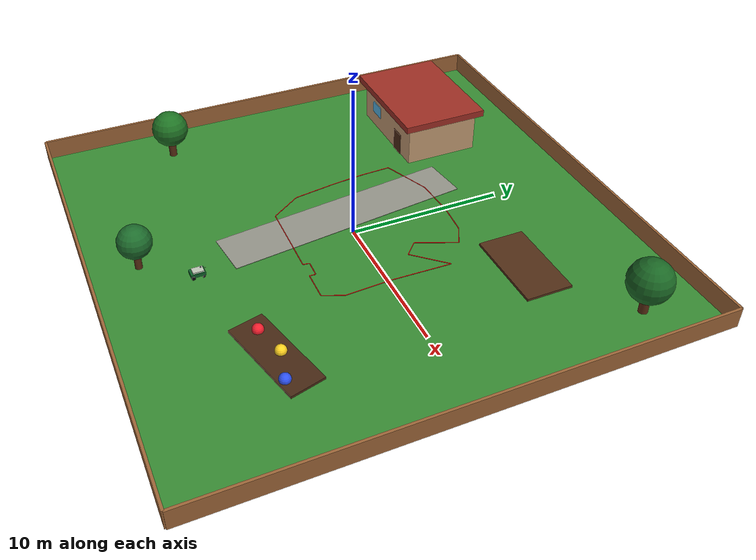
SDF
<?xml version="1.0"?>
<sdf version="1.6">
  <world name="mower_garden_1000sqm">
    <gravity>0 0 -9.8</gravity>
    <magnetic_field>6e-06 2.3e-05 -4.2e-05</magnetic_field>
    <atmosphere type="adiabatic"/>

    <physics name="default_physics" default="0" type="ode">
      <max_step_size>0.001</max_step_size>
      <real_time_factor>1.0</real_time_factor>
      <real_time_update_rate>1000</real_time_update_rate>
    </physics>

    <scene>
      <ambient>0.70 0.72 0.68 1</ambient>
      <background>0.74 0.86 0.96 1</background>
      <shadows>true</shadows>
    </scene>

    <light name="sun" type="directional">
      <cast_shadows>true</cast_shadows>
      <pose>0 0 14 0 0 0</pose>
      <diffuse>1.0 0.96 0.86 1</diffuse>
      <specular>0.35 0.35 0.30 1</specular>
      <attenuation>
        <range>1000</range>
        <constant>0.9</constant>
        <linear>0.01</linear>
        <quadratic>0.001</quadratic>
      </attenuation>
      <direction>-0.45 0.25 -0.86</direction>
    </light>

    <model name="lawn_1024sqm">
      <static>true</static>
      <link name="link">
        <collision name="collision">
          <geometry>
            <plane>
              <normal>0 0 1</normal>
              <size>32 32</size>
            </plane>
          </geometry>
          <surface>
            <friction>
              <ode>
                <mu>1.0</mu>
                <mu2>1.0</mu2>
              </ode>
            </friction>
          </surface>
        </collision>
        <visual name="visual">
          <geometry>
            <plane>
              <normal>0 0 1</normal>
              <size>32 32</size>
            </plane>
          </geometry>
          <material>
            <ambient>0.18 0.43 0.16 1</ambient>
            <diffuse>0.22 0.55 0.20 1</diffuse>
          </material>
        </visual>
      </link>
    </model>

    <model name="house">
      <static>true</static>
      <pose>-9 9 0 0 0 0</pose>
      <link name="body">
        <pose>0 0 1.25 0 0 0</pose>
        <collision name="collision">
          <geometry>
            <box>
              <size>7 5 2.5</size>
            </box>
          </geometry>
        </collision>
        <visual name="visual">
          <geometry>
            <box>
              <size>7 5 2.5</size>
            </box>
          </geometry>
          <material>
            <ambient>0.72 0.56 0.42 1</ambient>
            <diffuse>0.78 0.62 0.46 1</diffuse>
          </material>
        </visual>
      </link>
      <link name="roof">
        <pose>0 0 2.9 0 0 0</pose>
        <visual name="visual">
          <geometry>
            <box>
              <size>7.8 5.8 0.45</size>
            </box>
          </geometry>
          <material>
            <ambient>0.45 0.12 0.10 1</ambient>
            <diffuse>0.62 0.18 0.14 1</diffuse>
          </material>
        </visual>
      </link>
      <link name="door">
        <pose>1.7 -2.53 0.75 0 0 0</pose>
        <visual name="visual">
          <geometry>
            <box>
              <size>1.0 0.05 1.5</size>
            </box>
          </geometry>
          <material>
            <ambient>0.22 0.11 0.05 1</ambient>
            <diffuse>0.30 0.16 0.08 1</diffuse>
          </material>
        </visual>
      </link>
      <link name="window_left">
        <pose>-1.6 -2.54 1.45 0 0 0</pose>
        <visual name="visual">
          <geometry>
            <box>
              <size>1.2 0.04 0.8</size>
            </box>
          </geometry>
          <material>
            <ambient>0.22 0.55 0.75 1</ambient>
            <diffuse>0.34 0.72 0.92 1</diffuse>
          </material>
        </visual>
      </link>
      <link name="window_right">
        <pose>-3.0 0.6 1.45 0 0 1.5708</pose>
        <visual name="visual">
          <geometry>
            <box>
              <size>1.2 0.04 0.8</size>
            </box>
          </geometry>
          <material>
            <ambient>0.22 0.55 0.75 1</ambient>
            <diffuse>0.34 0.72 0.92 1</diffuse>
          </material>
        </visual>
      </link>
    </model>

    <model name="garden_beds">
      <static>true</static>
      <link name="vegetable_bed">
        <pose>7 8 0.08 0 0 0</pose>
        <collision name="collision">
          <geometry>
            <box>
              <size>5.5 3.0 0.16</size>
            </box>
          </geometry>
        </collision>
        <visual name="visual">
          <geometry>
            <box>
              <size>5.5 3.0 0.16</size>
            </box>
          </geometry>
          <material>
            <ambient>0.24 0.12 0.06 1</ambient>
            <diffuse>0.32 0.18 0.09 1</diffuse>
          </material>
        </visual>
      </link>
      <link name="flower_bed">
        <pose>8 -8 0.08 0 0 0.25</pose>
        <collision name="collision">
          <geometry>
            <box>
              <size>6.0 2.2 0.16</size>
            </box>
          </geometry>
        </collision>
        <visual name="visual">
          <geometry>
            <box>
              <size>6.0 2.2 0.16</size>
            </box>
          </geometry>
          <material>
            <ambient>0.20 0.12 0.07 1</ambient>
            <diffuse>0.28 0.16 0.08 1</diffuse>
          </material>
        </visual>
      </link>
      <link name="flower_patch_red">
        <pose>6.0 -8.3 0.25 0 0 0</pose>
        <visual name="visual">
          <geometry>
            <sphere>
              <radius>0.35</radius>
            </sphere>
          </geometry>
          <material>
            <ambient>0.85 0.08 0.12 1</ambient>
            <diffuse>0.95 0.12 0.18 1</diffuse>
          </material>
        </visual>
      </link>
      <link name="flower_patch_yellow">
        <pose>8.0 -7.7 0.25 0 0 0</pose>
        <visual name="visual">
          <geometry>
            <sphere>
              <radius>0.35</radius>
            </sphere>
          </geometry>
          <material>
            <ambient>0.95 0.72 0.08 1</ambient>
            <diffuse>1.0 0.82 0.12 1</diffuse>
          </material>
        </visual>
      </link>
      <link name="flower_patch_blue">
        <pose>10.0 -8.2 0.25 0 0 0</pose>
        <visual name="visual">
          <geometry>
            <sphere>
              <radius>0.35</radius>
            </sphere>
          </geometry>
          <material>
            <ambient>0.12 0.24 0.75 1</ambient>
            <diffuse>0.18 0.32 0.95 1</diffuse>
          </material>
        </visual>
      </link>
    </model>

    <model name="trees">
      <static>true</static>
      <link name="tree_1_trunk">
        <pose>-13 -8 0.75 0 0 0</pose>
        <collision name="collision">
          <geometry>
            <cylinder>
              <radius>0.25</radius>
              <length>1.5</length>
            </cylinder>
          </geometry>
        </collision>
        <visual name="visual">
          <geometry>
            <cylinder>
              <radius>0.25</radius>
              <length>1.5</length>
            </cylinder>
          </geometry>
          <material>
            <ambient>0.26 0.13 0.06 1</ambient>
            <diffuse>0.36 0.18 0.08 1</diffuse>
          </material>
        </visual>
      </link>
      <link name="tree_1_canopy">
        <pose>-13 -8 2.1 0 0 0</pose>
        <visual name="visual">
          <geometry>
            <sphere>
              <radius>1.2</radius>
            </sphere>
          </geometry>
          <material>
            <ambient>0.08 0.32 0.10 1</ambient>
            <diffuse>0.12 0.45 0.14 1</diffuse>
          </material>
        </visual>
      </link>
      <link name="tree_2_trunk">
        <pose>-2 -13 0.65 0 0 0</pose>
        <collision name="collision">
          <geometry>
            <cylinder>
              <radius>0.22</radius>
              <length>1.3</length>
            </cylinder>
          </geometry>
        </collision>
        <visual name="visual">
          <geometry>
            <cylinder>
              <radius>0.22</radius>
              <length>1.3</length>
            </cylinder>
          </geometry>
          <material>
            <ambient>0.26 0.13 0.06 1</ambient>
            <diffuse>0.36 0.18 0.08 1</diffuse>
          </material>
        </visual>
      </link>
      <link name="tree_2_canopy">
        <pose>-2 -13 1.95 0 0 0</pose>
        <visual name="visual">
          <geometry>
            <sphere>
              <radius>1.05</radius>
            </sphere>
          </geometry>
          <material>
            <ambient>0.07 0.30 0.12 1</ambient>
            <diffuse>0.11 0.42 0.17 1</diffuse>
          </material>
        </visual>
      </link>
      <link name="tree_3_trunk">
        <pose>13 12 0.8 0 0 0</pose>
        <collision name="collision">
          <geometry>
            <cylinder>
              <radius>0.28</radius>
              <length>1.6</length>
            </cylinder>
          </geometry>
        </collision>
        <visual name="visual">
          <geometry>
            <cylinder>
              <radius>0.28</radius>
              <length>1.6</length>
            </cylinder>
          </geometry>
          <material>
            <ambient>0.26 0.13 0.06 1</ambient>
            <diffuse>0.36 0.18 0.08 1</diffuse>
          </material>
        </visual>
      </link>
      <link name="tree_3_canopy">
        <pose>13 12 2.25 0 0 0</pose>
        <visual name="visual">
          <geometry>
            <sphere>
              <radius>1.35</radius>
            </sphere>
          </geometry>
          <material>
            <ambient>0.06 0.28 0.10 1</ambient>
            <diffuse>0.10 0.40 0.14 1</diffuse>
          </material>
        </visual>
      </link>
    </model>

    <model name="wooden_fence">
      <static>true</static>
      <pose>0 0 0 0 0 0</pose>
      <link name="north_rail">
        <pose>0 16 0.65 0 0 0</pose>
        <collision name="collision">
          <geometry>
            <box>
              <size>32 0.16 1.3</size>
            </box>
          </geometry>
        </collision>
        <visual name="visual">
          <geometry>
            <box>
              <size>32 0.16 1.3</size>
            </box>
          </geometry>
          <material>
            <ambient>0.48 0.30 0.16 1</ambient>
            <diffuse>0.62 0.40 0.22 1</diffuse>
          </material>
        </visual>
      </link>
      <link name="south_rail">
        <pose>0 -16 0.65 0 0 0</pose>
        <collision name="collision">
          <geometry>
            <box>
              <size>32 0.16 1.3</size>
            </box>
          </geometry>
        </collision>
        <visual name="visual">
          <geometry>
            <box>
              <size>32 0.16 1.3</size>
            </box>
          </geometry>
          <material>
            <ambient>0.48 0.30 0.16 1</ambient>
            <diffuse>0.62 0.40 0.22 1</diffuse>
          </material>
        </visual>
      </link>
      <link name="east_rail">
        <pose>16 0 0.65 0 0 0</pose>
        <collision name="collision">
          <geometry>
            <box>
              <size>0.16 32 1.3</size>
            </box>
          </geometry>
        </collision>
        <visual name="visual">
          <geometry>
            <box>
              <size>0.16 32 1.3</size>
            </box>
          </geometry>
          <material>
            <ambient>0.48 0.30 0.16 1</ambient>
            <diffuse>0.62 0.40 0.22 1</diffuse>
          </material>
        </visual>
      </link>
      <link name="west_rail">
        <pose>-16 0 0.65 0 0 0</pose>
        <collision name="collision">
          <geometry>
            <box>
              <size>0.16 32 1.3</size>
            </box>
          </geometry>
        </collision>
        <visual name="visual">
          <geometry>
            <box>
              <size>0.16 32 1.3</size>
            </box>
          </geometry>
          <material>
            <ambient>0.48 0.30 0.16 1</ambient>
            <diffuse>0.62 0.40 0.22 1</diffuse>
          </material>
        </visual>
      </link>
    </model>

    <model name="stone_path">
      <static>true</static>
      <link name="path">
        <pose>-2 0 0.02 0 0 0.12</pose>
        <visual name="visual">
          <geometry>
            <box>
              <size>3.0 16.0 0.04</size>
            </box>
          </geometry>
          <material>
            <ambient>0.42 0.42 0.39 1</ambient>
            <diffuse>0.58 0.58 0.54 1</diffuse>
          </material>
        </visual>
      </link>
    </model>

    <include>
      <uri>model://boundary_points</uri>
      <pose>0 0 0 0 0 0</pose>
    </include>

    <include>
      <uri>model://mower_robot</uri>
      <pose>0 -10 0.08 0 0 1.5708</pose>
    </include>
  </world>
</sdf>

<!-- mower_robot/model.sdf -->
<sdf version="1.6">
  <model name="mower_robot">
    <pose>0 0 0 0 0 0</pose>

    <link name="base_link">
      <inertial>
        <pose>-0.15 0 0 0 0 0</pose>
        <mass>20.0</mass>
        <inertia>
          <ixx>1.10</ixx>
          <ixy>0.0</ixy>
          <ixz>0.0</ixz>
          <iyy>1.65</iyy>
          <iyz>0.0</iyz>
          <izz>2.05</izz>
        </inertia>
      </inertial>
      <collision name="body_collision">
        <pose>0 0 0.08 0 0 0</pose>
        <geometry>
          <box>
            <size>0.9 0.62 0.22</size>
          </box>
        </geometry>
        <surface>
          <friction>
            <ode>
              <mu>0.8</mu>
              <mu2>0.8</mu2>
            </ode>
          </friction>
        </surface>
      </collision>
      <visual name="body_visual">
        <pose>0 0 0.08 0 0 0</pose>
        <geometry>
          <box>
            <size>0.9 0.62 0.22</size>
          </box>
        </geometry>
        <material>
          <ambient>0.05 0.28 0.12 1</ambient>
          <diffuse>0.05 0.38 0.16 1</diffuse>
          <specular>0.08 0.08 0.08 1</specular>
        </material>
      </visual>
      <visual name="top_cover">
        <pose>0.04 0 0.24 0 0 0</pose>
        <geometry>
          <box>
            <size>0.68 0.48 0.10</size>
          </box>
        </geometry>
        <material>
          <ambient>0.75 0.78 0.72 1</ambient>
          <diffuse>0.75 0.78 0.72 1</diffuse>
        </material>
      </visual>
      <visual name="cutting_disc">
        <pose>-0.05 0 -0.045 0 0 0</pose>
        <geometry>
          <cylinder>
            <radius>0.24</radius>
            <length>0.025</length>
          </cylinder>
        </geometry>
        <material>
          <ambient>0.14 0.14 0.14 1</ambient>
          <diffuse>0.16 0.16 0.16 1</diffuse>
        </material>
      </visual>
    </link>

    <link name="front_left_caster_yoke">
      <pose>0.36 0.34 -0.04 0 0 0</pose>
      <inertial>
        <mass>0.4</mass>
        <inertia>
          <ixx>0.001</ixx>
          <ixy>0.0</ixy>
          <ixz>0.0</ixz>
          <iyy>0.001</iyy>
          <iyz>0.0</iyz>
          <izz>0.001</izz>
        </inertia>
      </inertial>
      <visual name="fork_visual">
        <pose>0 0 0 0 0 0</pose>
        <geometry>
          <box>
            <size>0.06 0.10 0.12</size>
          </box>
        </geometry>
        <material>
          <ambient>0.18 0.18 0.18 1</ambient>
          <diffuse>0.22 0.22 0.22 1</diffuse>
        </material>
      </visual>
    </link>

    <link name="front_left_caster_wheel">
      <pose>0.30 0.34 -0.08 0 0 0</pose>
      <inertial>
        <mass>0.8</mass>
        <inertia>
          <ixx>0.004</ixx>
          <ixy>0.0</ixy>
          <ixz>0.0</ixz>
          <iyy>0.004</iyy>
          <iyz>0.0</iyz>
          <izz>0.007</izz>
        </inertia>
      </inertial>
      <collision name="collision">
        <pose>0 0 0 -1.5708 0 0</pose>
        <geometry>
          <cylinder>
            <radius>0.06</radius>
            <length>0.06</length>
          </cylinder>
        </geometry>
        <surface>
          <friction>
            <ode>
              <mu>1.0</mu>
              <mu2>1.0</mu2>
              <slip1>0.3</slip1>
              <slip2>0.3</slip2>
            </ode>
          </friction>
        </surface>
      </collision>
      <visual name="visual">
        <pose>0 0 0 -1.5708 0 0</pose>
        <geometry>
          <cylinder>
            <radius>0.06</radius>
            <length>0.06</length>
          </cylinder>
        </geometry>
        <material>
          <ambient>0.02 0.02 0.02 1</ambient>
          <diffuse>0.02 0.02 0.02 1</diffuse>
        </material>
      </visual>
    </link>

    <link name="front_right_caster_yoke">
      <pose>0.36 -0.34 -0.04 0 0 0</pose>
      <inertial>
        <mass>0.4</mass>
        <inertia>
          <ixx>0.001</ixx>
          <ixy>0.0</ixy>
          <ixz>0.0</ixz>
          <iyy>0.001</iyy>
          <iyz>0.0</iyz>
          <izz>0.001</izz>
        </inertia>
      </inertial>
      <visual name="fork_visual">
        <pose>0 0 0 0 0 0</pose>
        <geometry>
          <box>
            <size>0.06 0.10 0.12</size>
          </box>
        </geometry>
        <material>
          <ambient>0.18 0.18 0.18 1</ambient>
          <diffuse>0.22 0.22 0.22 1</diffuse>
        </material>
      </visual>
    </link>

    <link name="front_right_caster_wheel">
      <pose>0.30 -0.34 -0.08 0 0 0</pose>
      <inertial>
        <mass>0.8</mass>
        <inertia>
          <ixx>0.004</ixx>
          <ixy>0.0</ixy>
          <ixz>0.0</ixz>
          <iyy>0.004</iyy>
          <iyz>0.0</iyz>
          <izz>0.007</izz>
        </inertia>
      </inertial>
      <collision name="collision">
        <pose>0 0 0 -1.5708 0 0</pose>
        <geometry>
          <cylinder>
            <radius>0.06</radius>
            <length>0.06</length>
          </cylinder>
        </geometry>
        <surface>
          <friction>
            <ode>
              <mu>1.0</mu>
              <mu2>1.0</mu2>
              <slip1>0.3</slip1>
              <slip2>0.3</slip2>
            </ode>
          </friction>
        </surface>
      </collision>
      <visual name="visual">
        <pose>0 0 0 -1.5708 0 0</pose>
        <geometry>
          <cylinder>
            <radius>0.06</radius>
            <length>0.06</length>
          </cylinder>
        </geometry>
        <material>
          <ambient>0.02 0.02 0.02 1</ambient>
          <diffuse>0.02 0.02 0.02 1</diffuse>
        </material>
      </visual>
    </link>

    <link name="rear_left_wheel">
      <pose>-0.32 0.34 -0.02 -1.5708 0 0</pose>
      <inertial>
        <mass>1.2</mass>
        <inertia>
          <ixx>0.006</ixx>
          <ixy>0.0</ixy>
          <ixz>0.0</ixz>
          <iyy>0.006</iyy>
          <iyz>0.0</iyz>
          <izz>0.010</izz>
        </inertia>
      </inertial>
      <collision name="collision">
        <geometry>
          <cylinder>
            <radius>0.12</radius>
            <length>0.08</length>
          </cylinder>
        </geometry>
        <surface>
          <friction>
            <ode>
              <mu>1.0</mu>
              <mu2>1.0</mu2>
              <slip1>0.01</slip1>
              <slip2>0.01</slip2>
            </ode>
          </friction>
        </surface>
      </collision>
      <visual name="visual">
        <geometry>
          <cylinder>
            <radius>0.12</radius>
            <length>0.08</length>
          </cylinder>
        </geometry>
        <material>
          <ambient>0.02 0.02 0.02 1</ambient>
          <diffuse>0.02 0.02 0.02 1</diffuse>
        </material>
      </visual>
    </link>

    <link name="rear_right_wheel">
      <pose>-0.32 -0.34 -0.02 -1.5708 0 0</pose>
      <inertial>
        <mass>1.2</mass>
        <inertia>
          <ixx>0.006</ixx>
          <ixy>0.0</ixy>
          <ixz>0.0</ixz>
          <iyy>0.006</iyy>
          <iyz>0.0</iyz>
          <izz>0.010</izz>
        </inertia>
      </inertial>
      <collision name="collision">
        <geometry>
          <cylinder>
            <radius>0.12</radius>
            <length>0.08</length>
          </cylinder>
        </geometry>
        <surface>
          <friction>
            <ode>
              <mu>1.0</mu>
              <mu2>1.0</mu2>
              <slip1>0.01</slip1>
              <slip2>0.01</slip2>
            </ode>
          </friction>
        </surface>
      </collision>
      <visual name="visual">
        <geometry>
          <cylinder>
            <radius>0.12</radius>
            <length>0.08</length>
          </cylinder>
        </geometry>
        <material>
          <ambient>0.02 0.02 0.02 1</ambient>
          <diffuse>0.02 0.02 0.02 1</diffuse>
        </material>
      </visual>
    </link>

    <link name="camera_link">
      <pose>0.50 0.0 0.30 0 0 0</pose>
      <inertial>
        <mass>0.08</mass>
        <inertia>
          <ixx>0.0002</ixx>
          <ixy>0.0</ixy>
          <ixz>0.0</ixz>
          <iyy>0.0002</iyy>
          <iyz>0.0</iyz>
          <izz>0.0002</izz>
        </inertia>
      </inertial>
      <visual name="camera_housing">
        <geometry>
          <box>
            <size>0.05 0.04 0.03</size>
          </box>
        </geometry>
        <material>
          <ambient>0.10 0.10 0.10 1</ambient>
          <diffuse>0.12 0.12 0.12 1</diffuse>
        </material>
      </visual>
      <sensor type="ray" name="front_tof">
        <always_on>true</always_on>
        <update_rate>20</update_rate>
        <visualize>false</visualize>
        <ray>
          <scan>
            <horizontal>
              <samples>100</samples>
              <resolution>1.0</resolution>
              <min_angle>-0.785</min_angle>
              <max_angle>0.785</max_angle>
            </horizontal>
            <vertical>
              <samples>80</samples>
              <resolution>1.0</resolution>
              <min_angle>-0.611</min_angle>
              <max_angle>0.611</max_angle>
            </vertical>
          </scan>
          <range>
            <min>0.05</min>
            <max>2.5</max>
            <resolution>0.05</resolution>
          </range>
          <noise>
            <type>gaussian</type>
            <mean>0.0</mean>
            <stddev>0.01</stddev>
          </noise>
        </ray>
        <plugin name="front_tof_controller" filename="libgazebo_ros_ray_sensor.so">
          <ros>
            <namespace>/mower_tof</namespace>
            <remapping>~/out:=points</remapping>
          </ros>
          <output_type>sensor_msgs/PointCloud2</output_type>
          <frame_name>camera_link</frame_name>
        </plugin>
      </sensor>
      <sensor type="camera" name="front_camera">
        <always_on>false</always_on>
        <update_rate>15</update_rate>
        <visualize>false</visualize>
        <camera name="front_camera_sensor">
          <horizontal_fov>1.5708</horizontal_fov>
          <vertical_fov>1.22173</vertical_fov>
          <image>
            <width>640</width>
            <height>480</height>
            <format>R8G8B8</format>
          </image>
          <clip>
            <near>0.05</near>
            <far>30.0</far>
          </clip>
          <noise>
            <type>gaussian</type>
            <mean>0.0</mean>
            <stddev>0.002</stddev>
          </noise>
        </camera>
        <plugin name="front_camera_controller" filename="libgazebo_ros_camera.so">
          <ros>
            <namespace>/mower_camera</namespace>
            <remapping>image_raw:=image_raw</remapping>
            <remapping>camera_info:=camera_info</remapping>
          </ros>
          <frame_name>camera_link</frame_name>
        </plugin>
      </sensor>
    </link>

    <link name="lidar_link">
      <pose>0.23 0.0 0.42 0 0.0872665 0</pose>
      <inertial>
        <mass>0.18</mass>
        <inertia>
          <ixx>0.0003</ixx>
          <ixy>0.0</ixy>
          <ixz>0.0</ixz>
          <iyy>0.0003</iyy>
          <iyz>0.0</iyz>
          <izz>0.0003</izz>
        </inertia>
      </inertial>
      <visual name="lidar_housing">
        <geometry>
          <cylinder>
            <radius>0.045</radius>
            <length>0.04</length>
          </cylinder>
        </geometry>
        <material>
          <ambient>0.02 0.02 0.02 1</ambient>
          <diffuse>0.03 0.03 0.03 1</diffuse>
        </material>
      </visual>
      <sensor type="ray" name="front_lidar">
        <always_on>true</always_on>
        <update_rate>10</update_rate>
        <visualize>false</visualize>
        <ray>
          <scan>
            <horizontal>
              <samples>720</samples>
              <resolution>1.0</resolution>
              <min_angle>-3.14159</min_angle>
              <max_angle>3.14159</max_angle>
            </horizontal>
            <vertical>
              <samples>16</samples>
              <resolution>1.0</resolution>
              <min_angle>0.0</min_angle>
              <max_angle>0.3</max_angle>
            </vertical>
          </scan>
          <range>
            <min>0.10</min>
            <max>12.0</max>
            <resolution>0.01</resolution>
          </range>
          <noise>
            <type>gaussian</type>
            <mean>0.0</mean>
            <stddev>0.01</stddev>
          </noise>
        </ray>
        <plugin name="front_lidar_controller" filename="libgazebo_ros_ray_sensor.so">
          <ros>
            <namespace>/</namespace>
            <remapping>~/out:=sensor_lidar</remapping>
          </ros>
          <output_type>sensor_msgs/PointCloud2</output_type>
          <frame_name>lidar_link</frame_name>
        </plugin>
      </sensor>
    </link>

    <joint name="front_left_caster_swivel_joint" type="revolute">
      <parent>base_link</parent>
      <child>front_left_caster_yoke</child>
      <axis>
        <xyz>0 0 1</xyz>
        <limit>
          <lower>-1e16</lower>
          <upper>1e16</upper>
        </limit>
        <dynamics>
          <damping>0.005</damping>
          <friction>0.0</friction>
        </dynamics>
      </axis>
    </joint>

    <joint name="front_left_caster_wheel_joint" type="revolute">
      <parent>front_left_caster_yoke</parent>
      <child>front_left_caster_wheel</child>
      <axis>
        <xyz>0 1 0</xyz>
        <limit>
          <lower>-1e16</lower>
          <upper>1e16</upper>
        </limit>
        <dynamics>
          <damping>0.01</damping>
          <friction>0.0</friction>
        </dynamics>
      </axis>
    </joint>

    <joint name="front_right_caster_swivel_joint" type="revolute">
      <parent>base_link</parent>
      <child>front_right_caster_yoke</child>
      <axis>
        <xyz>0 0 1</xyz>
        <limit>
          <lower>-1e16</lower>
          <upper>1e16</upper>
        </limit>
        <dynamics>
          <damping>0.005</damping>
          <friction>0.0</friction>
        </dynamics>
      </axis>
    </joint>

    <joint name="front_right_caster_wheel_joint" type="revolute">
      <parent>front_right_caster_yoke</parent>
      <child>front_right_caster_wheel</child>
      <axis>
        <xyz>0 1 0</xyz>
        <limit>
          <lower>-1e16</lower>
          <upper>1e16</upper>
        </limit>
        <dynamics>
          <damping>0.01</damping>
          <friction>0.0</friction>
        </dynamics>
      </axis>
    </joint>

    <joint name="rear_left_wheel_joint" type="revolute">
      <parent>base_link</parent>
      <child>rear_left_wheel</child>
      <axis>
        <xyz>0 0 1</xyz>
        <limit>
          <lower>-1e16</lower>
          <upper>1e16</upper>
        </limit>
      </axis>
    </joint>
    <joint name="rear_right_wheel_joint" type="revolute">
      <parent>base_link</parent>
      <child>rear_right_wheel</child>
      <axis>
        <xyz>0 0 1</xyz>
        <limit>
          <lower>-1e16</lower>
          <upper>1e16</upper>
        </limit>
      </axis>
    </joint>

    <joint name="camera_joint" type="fixed">
      <parent>base_link</parent>
      <child>camera_link</child>
    </joint>

    <joint name="lidar_joint" type="fixed">
      <parent>base_link</parent>
      <child>lidar_link</child>
    </joint>

    <plugin name="diff_drive" filename="libgazebo_ros_diff_drive.so">
      <ros>
        <namespace>/</namespace>
        <remapping>cmd_vel:=cmd_vel</remapping>
        <remapping>odom:=odom</remapping>
      </ros>

      <left_joint>rear_left_wheel_joint</left_joint>
      <right_joint>rear_right_wheel_joint</right_joint>

      <wheel_separation>0.68</wheel_separation>
      <wheel_diameter>0.24</wheel_diameter>

      <max_wheel_torque>6.0</max_wheel_torque>
      <max_wheel_acceleration>2.0</max_wheel_acceleration>

      <publish_odom>true</publish_odom>
      <publish_odom_tf>true</publish_odom_tf>
      <publish_wheel_tf>true</publish_wheel_tf>

      <odometry_frame>odom</odometry_frame>
      <robot_base_frame>base_link</robot_base_frame>
    </plugin>
  </model>
</sdf>
